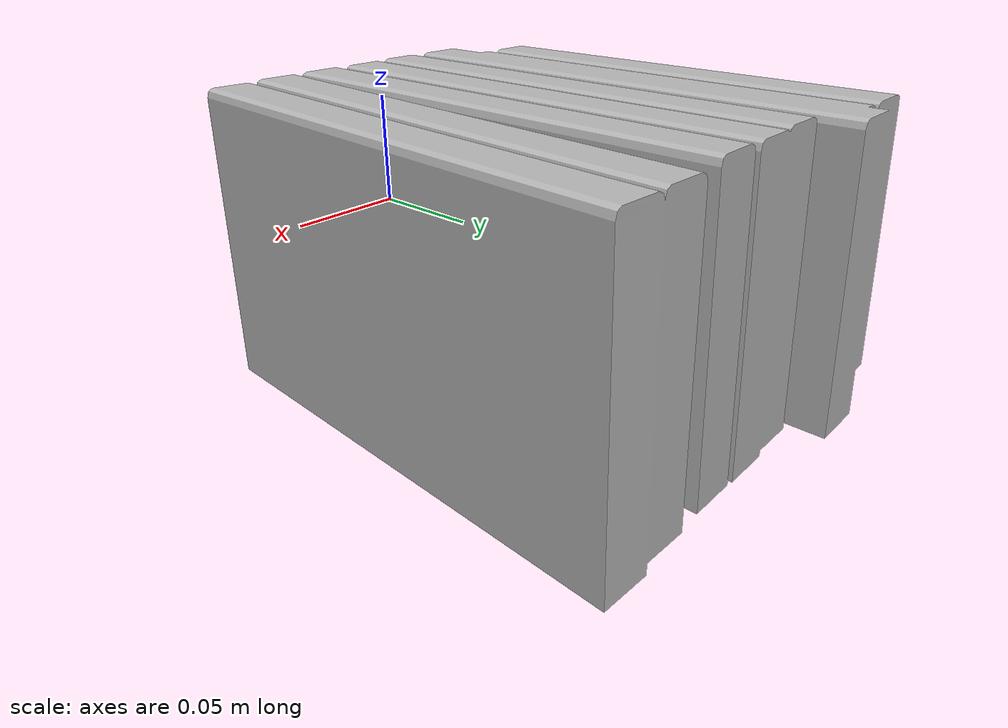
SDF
<?xml version="1.0" ?>
<sdf version="1.4">
  <model name="shelf2_book2_v3">
    <link name="body">
      <pose>0 0 0 0 0 0</pose>
      <inertial>
        <pose>  -0.002254   0.102529   0.004254 0 0 0</pose>
        <mass>0.5</mass>
        <inertia>
          <ixx>0.01</ixx>
          <ixy>0</ixy>
          <ixz>0</ixz>
          <iyy>0.01</iyy>
          <iyz>0</iyz>
          <izz>0.01</izz>
        </inertia>
      </inertial>
      <collision name="collision">
        <geometry>
          <mesh>
            <uri>model://bookshelf/shelf2_items/book2_v3/book2_v3.dae</uri>
          </mesh>
        </geometry>
      </collision>
      <visual name="visual">
        <geometry>
          <mesh>
            <uri>model://bookshelf/shelf2_items/book2_v3/book2_v3.dae</uri>
          </mesh>
        </geometry>
      </visual>
    </link>
  </model>
</sdf>
